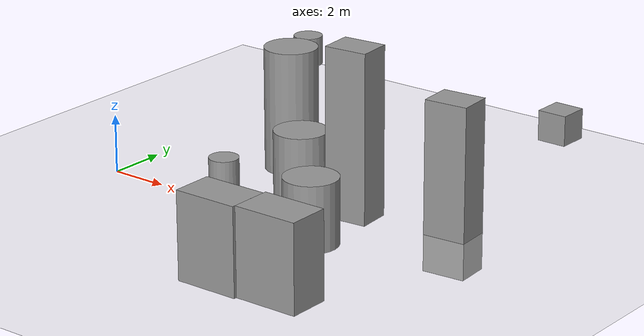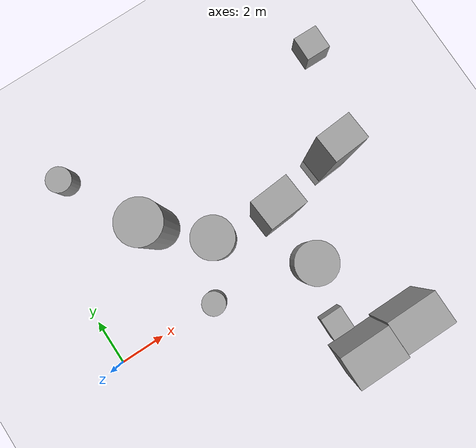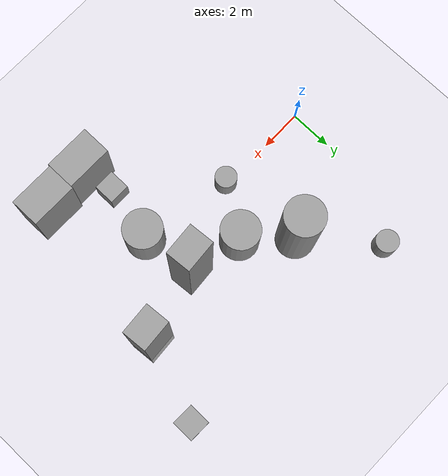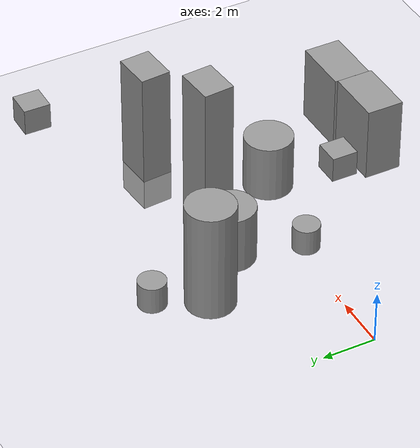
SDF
<sdf version="1.7">
 <world name="default">
  <light name="sun" type="directional">
   <pose>0 0 10 0 -0 0</pose>
   <diffuse>0.8 0.8 0.8 1</diffuse>
   <specular>0.2 0.2 0.2 1</specular>
   <attenuation>
    <range>1000</range>
    <constant>0.9</constant>
    <linear>0.01</linear>
    <quadratic>0.001</quadratic>
   </attenuation>
   <direction>-0.5 0.1 -0.9</direction>
   <spot><inner_angle>0</inner_angle><outer_angle>0</outer_angle><falloff>0</falloff></spot>
  </light>
  <model name="ground_plane">
   <static>1</static>
   <link name="link">
    <collision name="collision">
     <geometry><plane><normal>0 0 1</normal><size>100 100</size></plane></geometry>
     <surface>
      <contact><collide_bitmask>65535</collide_bitmask></contact>
      <friction><ode><mu>100</mu><mu2>50</mu2></ode></friction>
     </surface>
    </collision>
    <visual name="visual">
     <cast_shadows>0</cast_shadows>
     <geometry><plane><normal>0 0 1</normal><size>100 100</size></plane></geometry>
     <material>
      <script><uri>file://media/materials/scripts/gazebo.material</uri><name>Gazebo/Grey</name></script>
     </material>
    </visual>
   </link>
  </model>
  <gravity>0 0 -9.8</gravity>
  <magnetic_field>6e-06 2.3e-05 -4.2e-05</magnetic_field>
  <atmosphere type="adiabatic"/>
  <physics type="ode">
   <max_step_size>0.001</max_step_size>
   <real_time_factor>1</real_time_factor>
   <real_time_update_rate>1000</real_time_update_rate>
  </physics>
  <scene><ambient>0.4 0.4 0.4 1</ambient><background>0.7 0.7 0.7 1</background><shadows>1</shadows></scene>
  <spherical_coordinates>
   <surface_model>EARTH_WGS84</surface_model>
   <latitude_deg>0</latitude_deg>
   <longitude_deg>0</longitude_deg>
   <elevation>0</elevation>
   <heading_deg>0</heading_deg>
  </spherical_coordinates>
  <model name="unit_cylinder">
   <pose>4.72155 0.007147 1.11454 0 0 -0.000155</pose>
   <link name="link">
    <inertial>
     <mass>1</mass>
     <inertia><ixx>0.145833</ixx><ixy>0</ixy><ixz>0</ixz><iyy>0.145833</iyy><iyz>0</iyz><izz>0.125</izz></inertia>
    </inertial>
    <collision name="collision">
     <geometry><cylinder><radius>0.500001</radius><length>1</length></cylinder></geometry>
    </collision>
    <visual name="visual">
     <geometry><cylinder><radius>0.500001</radius><length>1</length></cylinder></geometry>
     <material>
      <script><name>Gazebo/Grey</name><uri>file://media/materials/scripts/gazebo.material</uri></script>
     </material>
    </visual>
   </link>
  </model>
  <model name="unit_box">
   <pose>8.45893 -3.44935 0.586858 7e-06 -0 -7.3e-05</pose>
   <link name="link">
    <inertial>
     <mass>1</mass>
     <inertia>
      <ixx>0.166667</ixx>
      <ixy>0</ixy>
      <ixz>0</ixz>
      <iyy>0.166667</iyy>
      <iyz>0</iyz>
      <izz>0.166667</izz>
     </inertia>
    </inertial>
    <collision name="collision"><geometry><box><size>1 1 0.999987</size></box></geometry></collision>
    <visual name="visual">
     <geometry><box><size>1 1 0.999987</size></box></geometry>
     <material>
      <script><name>Gazebo/Grey</name><uri>file://media/materials/scripts/gazebo.material</uri></script>
     </material>
    </visual>
   </link>
  </model>
  <model name="unit_box_0">
   <pose>13.4291 6.32481 2.86456 0 0 -0.011887</pose>
   <link name="link">
    <inertial>
     <mass>1</mass>
     <inertia>
      <ixx>0.166667</ixx>
      <ixy>0</ixy>
      <ixz>0</ixz>
      <iyy>0.166667</iyy>
      <iyz>0</iyz>
      <izz>0.166667</izz>
     </inertia>
    </inertial>
    <collision name="collision"><geometry><box><size>1 1 0.999999</size></box></geometry></collision>
    <visual name="visual">
     <geometry><box><size>1 1 0.999999</size></box></geometry>
     <material>
      <script><name>Gazebo/Grey</name><uri>file://media/materials/scripts/gazebo.material</uri></script>
     </material>
    </visual>
   </link>
  </model>
  <model name="unit_cylinder_0">
   <pose>2.56567 7.05087 3.0267 1e-06 -0 0.001089</pose>
   <link name="link">
    <inertial>
     <mass>1</mass>
     <inertia><ixx>0.145833</ixx><ixy>0</ixy><ixz>0</ixz><iyy>0.145833</iyy><iyz>0</iyz><izz>0.125</izz></inertia>
    </inertial>
    <collision name="collision">
     <geometry><cylinder><radius>0.5</radius><length>0.999996</length></cylinder></geometry>
    </collision>
    <visual name="visual">
     <geometry><cylinder><radius>0.5</radius><length>0.999996</length></cylinder></geometry>
     <material>
      <script><name>Gazebo/Grey</name><uri>file://media/materials/scripts/gazebo.material</uri></script>
     </material>
    </visual>
   </link>
  </model>
  <model name="unit_box_0_clone">
   <pose>12.0112 2.50752 1.60921 0 -2e-06 0.077486</pose>
   <link name="link">
    <inertial>
     <mass>1</mass>
     <inertia>
      <ixx>0.166667</ixx>
      <ixy>0</ixy>
      <ixz>0</ixz>
      <iyy>0.166667</iyy>
      <iyz>0</iyz>
      <izz>0.166667</izz>
     </inertia>
    </inertial>
    <collision name="collision"><geometry><box><size>1.47677 1.15113 5.72913</size></box></geometry></collision>
    <visual name="visual">
     <geometry><box><size>1.47677 1.15113 5.72913</size></box></geometry>
     <material>
      <script><name>Gazebo/Grey</name><uri>file://media/materials/scripts/gazebo.material</uri></script>
     </material>
    </visual>
   </link>
  </model>
  <model name="unit_cylinder_clone">
   <pose>6.13318 2.20443 1.11453 0 -0 0.065905</pose>
   <link name="link">
    <inertial>
     <mass>1</mass>
     <inertia><ixx>0.145833</ixx><ixy>0</ixy><ixz>0</ixz><iyy>0.145833</iyy><iyz>0</iyz><izz>0.125</izz></inertia>
    </inertial>
    <collision name="collision">
     <geometry><cylinder><radius>0.90937</radius><length>2.22908</length></cylinder></geometry>
    </collision>
    <visual name="visual">
     <geometry><cylinder><radius>0.90937</radius><length>2.22908</length></cylinder></geometry>
     <material>
      <script><name>Gazebo/Grey</name><uri>file://media/materials/scripts/gazebo.material</uri></script>
     </material>
    </visual>
   </link>
  </model>
  <model name="unit_box_0_clone_clone">
   <pose>8.70483 1.74318 2.86456 0 -0 0.080467</pose>
   <link name="link">
    <inertial>
     <mass>1</mass>
     <inertia>
      <ixx>0.166667</ixx>
      <ixy>0</ixy>
      <ixz>0</ixz>
      <iyy>0.166667</iyy>
      <iyz>0</iyz>
      <izz>0.166667</izz>
     </inertia>
    </inertial>
    <collision name="collision"><geometry><box><size>1.47677 1.15113 5.72911</size></box></geometry></collision>
    <visual name="visual">
     <geometry><box><size>1.47677 1.15113 5.72911</size></box></geometry>
     <material>
      <script><name>Gazebo/Grey</name><uri>file://media/materials/scripts/gazebo.material</uri></script>
     </material>
    </visual>
   </link>
  </model>
  <model name="unit_cylinder_clone_clone">
   <pose>9.00973 -0.864529 1.11453 0 -0 0.065905</pose>
   <link name="link">
    <inertial>
     <mass>1</mass>
     <inertia><ixx>0.145833</ixx><ixy>0</ixy><ixz>0</ixz><iyy>0.145833</iyy><iyz>0</iyz><izz>0.125</izz></inertia>
    </inertial>
    <collision name="collision">
     <geometry><cylinder><radius>0.90937</radius><length>2.22908</length></cylinder></geometry>
    </collision>
    <visual name="visual">
     <geometry><cylinder><radius>0.90937</radius><length>2.22908</length></cylinder></geometry>
     <material>
      <script><name>Gazebo/Grey</name><uri>file://media/materials/scripts/gazebo.material</uri></script>
     </material>
    </visual>
   </link>
  </model>
  <model name="unit_box_clone">
   <pose>8.77994 -4.87943 1.46076 0 -1e-06 0.00168</pose>
   <link name="link">
    <inertial>
     <mass>1</mass>
     <inertia>
      <ixx>0.166667</ixx>
      <ixy>0</ixy>
      <ixz>0</ixz>
      <iyy>0.166667</iyy>
      <iyz>0</iyz>
      <izz>0.166667</izz>
     </inertia>
    </inertial>
    <collision name="collision"><geometry><box><size>2.18805 1.40283 2.92151</size></box></geometry></collision>
    <visual name="visual">
     <geometry><box><size>2.18805 1.40283 2.92151</size></box></geometry>
     <material>
      <script><name>Gazebo/Grey</name><uri>file://media/materials/scripts/gazebo.material</uri></script>
     </material>
    </visual>
   </link>
  </model>
  <model name="unit_box_clone_0">
   <pose>10.9681 -4.77613 1.46075 0 -3e-06 0.001729</pose>
   <link name="link">
    <inertial>
     <mass>1</mass>
     <inertia>
      <ixx>0.166667</ixx>
      <ixy>0</ixy>
      <ixz>0</ixz>
      <iyy>0.166667</iyy>
      <iyz>0</iyz>
      <izz>0.166667</izz>
     </inertia>
    </inertial>
    <collision name="collision"><geometry><box><size>2.18805 1.40283 2.92151</size></box></geometry></collision>
    <visual name="visual">
     <geometry><box><size>2.18805 1.40283 2.92151</size></box></geometry>
     <material>
      <script><name>Gazebo/Grey</name><uri>file://media/materials/scripts/gazebo.material</uri></script>
     </material>
    </visual>
   </link>
  </model>
  <model name="unit_cylinder_clone_clone_0">
   <pose>4.31545 3.96414 2.12996 0 -0 0.062901</pose>
   <link name="link">
    <inertial>
     <mass>1</mass>
     <inertia><ixx>0.145833</ixx><ixy>0</ixy><ixz>0</ixz><iyy>0.145833</iyy><iyz>0</iyz><izz>0.125</izz></inertia>
    </inertial>
    <collision name="collision">
     <geometry><cylinder><radius>0.90937</radius><length>4.25995</length></cylinder></geometry>
    </collision>
    <visual name="visual">
     <geometry><cylinder><radius>0.90937</radius><length>4.25995</length></cylinder></geometry>
     <material>
      <script><name>Gazebo/Grey</name><uri>file://media/materials/scripts/gazebo.material</uri></script>
     </material>
    </visual>
   </link>
  </model>
 </world>
</sdf>
